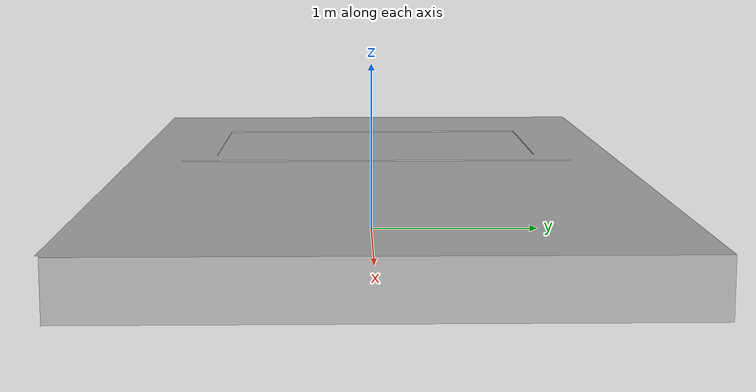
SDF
<?xml version="1.0" ?>
<sdf version="1.4">
    <model name="wall_window">
      <static>1</static>
      <link name="link">
        <inertial>
          <pose>0 0 0 0 0 0</pose>
          <mass>10.0</mass>
          <inertia>
            <ixx>1.0</ixx>
            <ixy>000000</ixy>
            <ixz>0.000000</ixz>
            <iyy>1.0</iyy>
            <iyz>0.000000</iyz>
            <izz>1.0</izz>
          </inertia>
        </inertial>
        <collision name="collision">
          <pose>0 0 0 0 0 0</pose>
          <geometry>
            <mesh>
                <uri>model://wall_window/meshes/wall_window_collision.dae</uri>
                <scale>0.01 0.01 0.01</scale>
            </mesh>
          </geometry>
        </collision>
        <visual name="visual">
          <pose>0 0 0 0 0 0</pose>
          <geometry>
            <mesh>
                <uri>model://wall_window/meshes/wall_window.dae</uri>
                <scale>0.01 0.01 0.01</scale>
            </mesh>
          </geometry>
        </visual>
      </link>
    </model>
</sdf>
